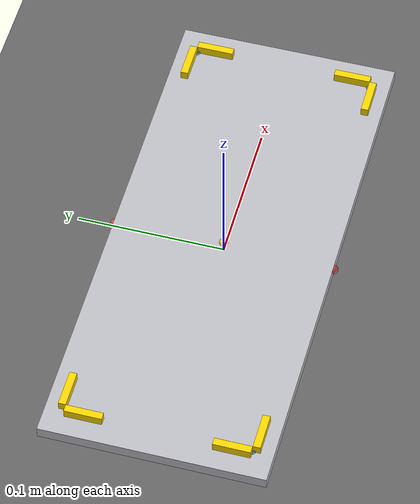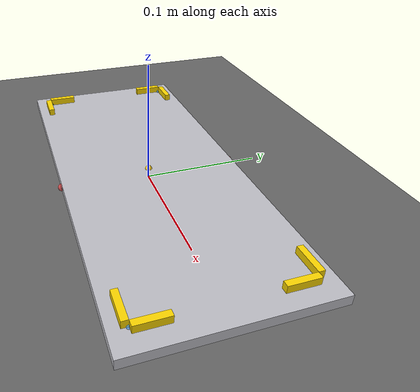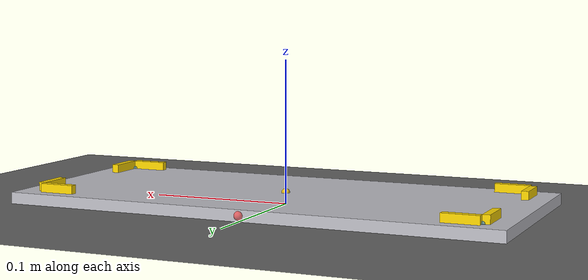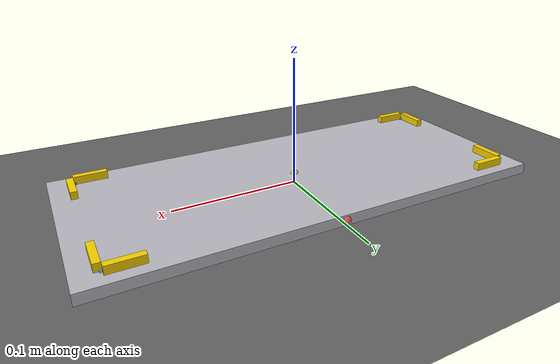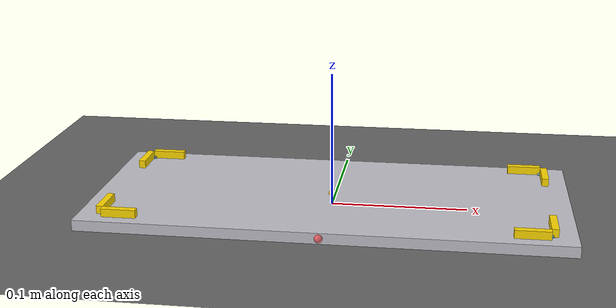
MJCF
<mujoco model="keyboard_pallet_base">

  <compiler angle="radian" autolimits="true"/>

  <option gravity="0 0 -9.81" timestep="0.002"/>

  <visual>
    <!-- Camera-friendly studio lighting: soft ambient fill + balanced highlights. -->
    <headlight ambient="0.35 0.35 0.35" diffuse="0.55 0.55 0.55" specular="0.25 0.25 0.25"/>
    <quality shadowsize="4096"/>
    <map znear="0.01" zfar="10"/>
  </visual>

  <asset>
    <material name="aluminum_plate"
              rgba="0.75 0.75 0.78 1"
              specular="0.6"
              shininess="0.4"
              reflectance="0.2"/>

    <material name="fixture_stop"
              rgba="1.0 0.85 0.0 1"
              specular="0.3"
              shininess="0.3"/>
  </asset>

  <worldbody>

    <!-- STUDIO LIGHTING FOR SCREENSHOTS / REPORT PHOTOS
         Soft three-point setup: overhead key, front fill, and rear rim.
         Visual-only; does not affect pallet geometry/controller logic. -->
    <light name="studio_key_overhead" mode="fixed" directional="false" pos="0.00 -0.35 1.20" dir="0.00 0.30 -1.00" diffuse="0.85 0.85 0.82" ambient="0.18 0.18 0.18" specular="0.30 0.30 0.28" attenuation="1 0.25 0.10" cutoff="90" exponent="1" castshadow="true"/>

    <light name="studio_fill_front" mode="fixed" directional="false" pos="0.35 -0.55 0.55" dir="-0.40 0.55 -0.35" diffuse="0.45 0.48 0.52" ambient="0.10 0.10 0.12" specular="0.12 0.12 0.14" attenuation="1 0.35 0.15" cutoff="100" exponent="1" castshadow="false"/>

    <light name="studio_rim_rear" mode="fixed" directional="false" pos="-0.35 0.45 0.65" dir="0.45 -0.55 -0.45" diffuse="0.35 0.38 0.42" ambient="0.03 0.03 0.04" specular="0.35 0.35 0.40" attenuation="1 0.40 0.20" cutoff="80" exponent="2" castshadow="false"/>

    <geom name="ground" type="plane" size="1 1 0.1"
          pos="0 0 0"
          friction="0.8 0.005 0.0001"
          rgba="0.4 0.4 0.4 1"/>

    <body name="pallet_base" pos="0 0 0.008">

      <geom name="base_plate"
            type="box"
            size="0.175 0.075 0.004"
            pos="0 0 -0.004"
            material="aluminum_plate"
            mass="1.5"
            friction="0.8 0.005 0.0001"
            condim="4"
            priority="1"/>

      <!-- ── FRONT-LEFT CORNER (−X, −Y) ────────────────────────────── -->

      <!-- FL X-stop: inner +X face at X=−0.1564, spans Y outside front face -->
      <!-- Center X = −0.1564 + 0.0125 = −0.1439                           -->
      <!-- Center Y = −(0.06115 + 0.0025) = −0.0637 (outside front face)   -->
      <geom name="stop_FL_x"
            type="box"
            size="0.0125 0.0025 0.003"
            pos="-0.1439 -0.0637 0.003"
            material="fixture_stop"
            mass="0.02"/>

      <!-- FL Y-stop: inner +X face at X=−0.1564, spans Y from corner inward -->
      <!-- Center X = −0.1564 − 0.0025 = −0.1589 (outside left face)       -->
      <!-- Center Y = −(0.06115 − 0.0125) = −0.04865, range [−0.06115, −0.02365] -->
      <geom name="stop_FL_y"
            type="box"
            size="0.0025 0.0125 0.003"
            pos="-0.1589 -0.04865 0.003"
            material="fixture_stop"
            mass="0.02"/>

      <!-- ── FRONT-RIGHT CORNER (+X, −Y) ───────────────────────────── -->

      <!-- FR X-stop: inner −X face at X=+0.1564, spans Y outside front face -->
      <!-- Center X = +0.1564 − 0.0125 = +0.1439                            -->
      <!-- Center Y = −0.0637 (same as FL)                                   -->
      <geom name="stop_FR_x"
            type="box"
            size="0.0125 0.0025 0.003"
            pos="0.1439 -0.0637 0.003"
            material="fixture_stop"
            mass="0.02"/>

      <!-- FR Y-stop: inner −X face at X=+0.1564, spans Y from corner inward -->
      <!-- Center X = +0.1564 + 0.0025 = +0.1589                             -->
      <!-- Center Y = −0.04865                                                -->
      <geom name="stop_FR_y"
            type="box"
            size="0.0025 0.0125 0.003"
            pos="0.1589 -0.04865 0.003"
            material="fixture_stop"
            mass="0.02"/>

      <!-- ── REAR-LEFT CORNER (−X, +Y) ────────────────────────────── -->

      <!-- RL X-stop: inner +X face at X=−0.1564, spans Y outside rear face -->
      <!-- Center Y = +(0.06115 + 0.0025) = +0.0637                         -->
      <geom name="stop_RL_x"
            type="box"
            size="0.0125 0.0025 0.003"
            pos="-0.1439 0.0637 0.003"
            material="fixture_stop"
            mass="0.02"/>

      <!-- RL Y-stop: outside left face, spans Y from corner inward         -->
      <!-- Center Y = +(0.06115 − 0.0125) = +0.04865, range [+0.02365, +0.06115] -->
      <geom name="stop_RL_y"
            type="box"
            size="0.0025 0.0125 0.003"
            pos="-0.1589 0.04865 0.003"
            material="fixture_stop"
            mass="0.02"/>

      <!-- ── REAR-RIGHT CORNER (+X, +Y) ───────────────────────────── -->

      <!-- RR X-stop: inner −X face at X=+0.1564, spans Y outside rear face -->
      <geom name="stop_RR_x"
            type="box"
            size="0.0125 0.0025 0.003"
            pos="0.1439 0.0637 0.003"
            material="fixture_stop"
            mass="0.02"/>

      <!-- RR Y-stop: outside right face, spans Y from corner inward        -->
      <geom name="stop_RR_y"
            type="box"
            size="0.0025 0.0125 0.003"
            pos="0.1589 0.04865 0.003"
            material="fixture_stop"
            mass="0.02"/>

      <!-- ══════════════════════════════════════════════════════════════
           REGISTRATION SITES
           ══════════════════════════════════════════════════════════════ -->

      <!-- Pallet center (top surface) — fixture dowel / stop pin reference -->
      <site name="pallet_center"
            type="sphere" size="0.003"
            pos="0 0 0"
            rgba="1 0.8 0 0.8"/>

      <!-- Case seating corners — where case bottom face meets pallet top -->
      <!-- These are the nominal case outer-corner positions on the pallet -->
      <site name="case_seat_FL"
            type="sphere" size="0.002"
            pos="-0.1564 -0.06115 0"
            rgba="0.2 0.6 1 0.6"/>
      <site name="case_seat_FR"
            type="sphere" size="0.002"
            pos=" 0.1564 -0.06115 0"
            rgba="0.2 0.6 1 0.6"/>
      <site name="case_seat_RL"
            type="sphere" size="0.002"
            pos="-0.1564  0.06115 0"
            rgba="0.2 0.6 1 0.6"/>
      <site name="case_seat_RR"
            type="sphere" size="0.002"
            pos=" 0.1564  0.06115 0"
            rgba="0.2 0.6 1 0.6"/>

      <!-- Conveyor stop-pin engage points (future assembly_cell.xml use) -->
      <!-- Front and rear center faces of pallet plate — where stop pins hit -->
      <site name="stop_pin_front"
            type="sphere" size="0.003"
            pos="0 -0.075 -0.004"
            rgba="1 0.3 0.3 0.7"/>
      <site name="stop_pin_rear"
            type="sphere" size="0.003"
            pos="0  0.075 -0.004"
            rgba="1 0.3 0.3 0.7"/>

    </body>

  </worldbody>

</mujoco>
